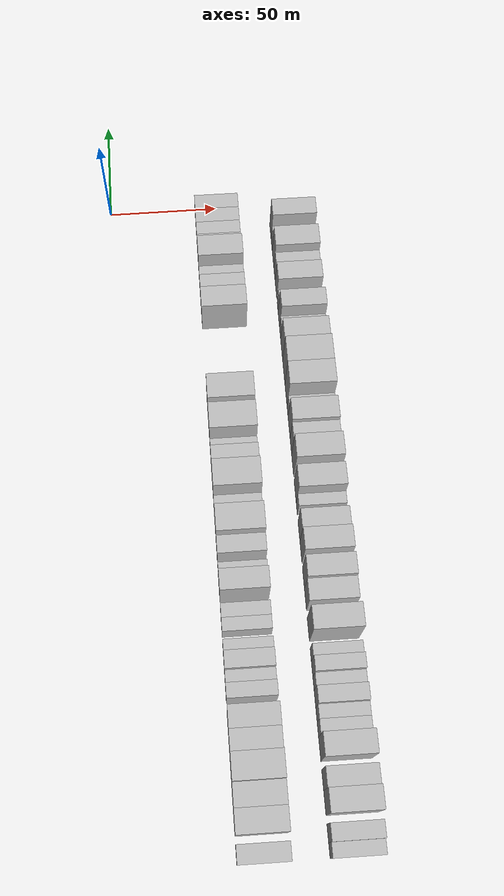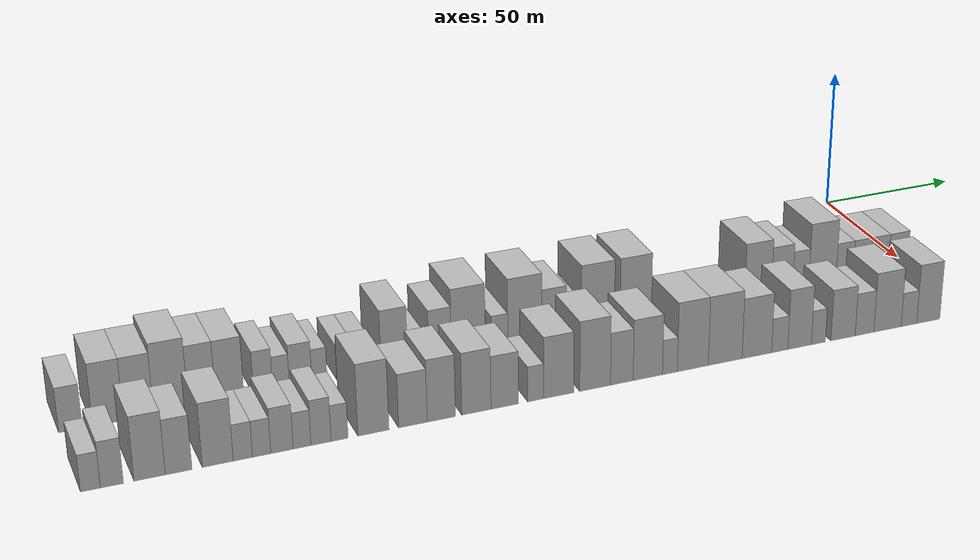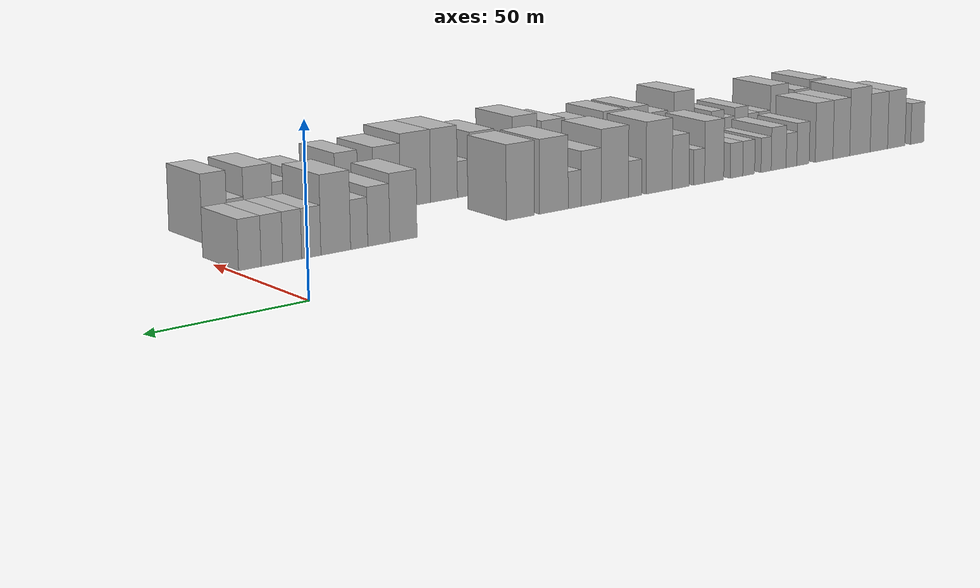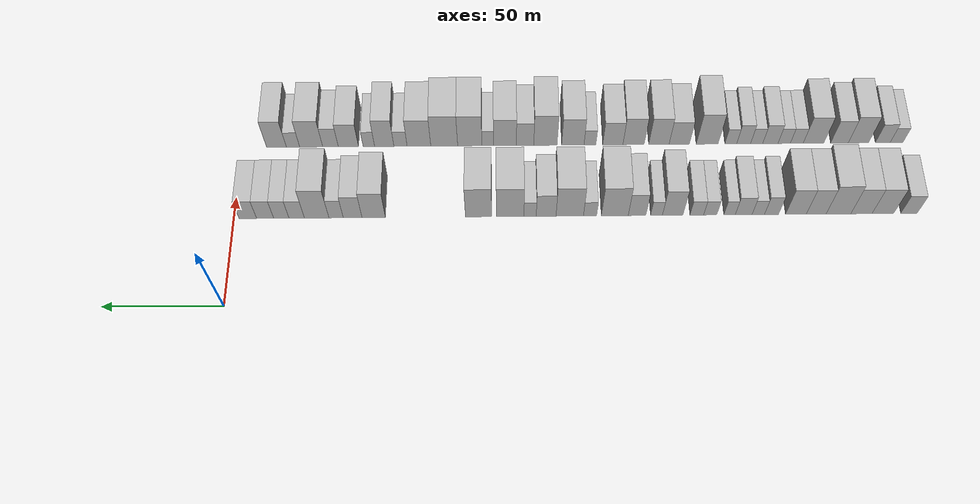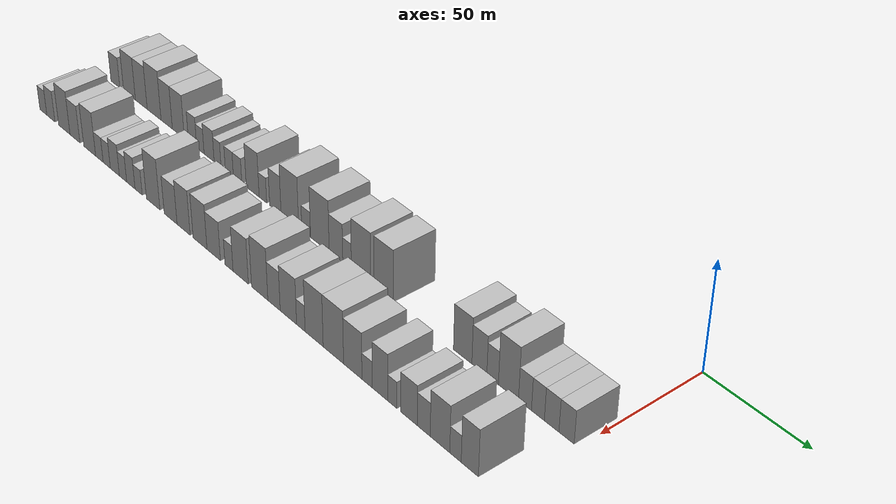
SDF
<sdf version="1.6">
 <world name="default">
  <model name="building_1">
   <static>1</static>
   <pose>50.0000 -286.4982 0 0.000000 0.000000 0.000000</pose>
   <link name="link">
    <pose>0 0 7.50 0 0 0</pose>
    <collision name="collision"><geometry><box><size>20.0000 7.0036 15.0000</size></box></geometry></collision>
    <visual name="visual">
     <cast_shadows>0</cast_shadows>
     <geometry><box><size>20.0000 7.0036 15.0000</size></box></geometry>
     <material>
      <script>
       <uri>model://HANNAS_wall/materials/scripts</uri>
       <uri>model://HANNAS_wall/materials/textures</uri>
       <name>vrc/HANNAS_wall</name>
      </script>
     </material>
    </visual>
   </link>
  </model>
  <model name="building_2">
   <static>1</static>
   <pose>50.0000 -275.3870 0 0.000000 0.000000 0.000000</pose>
   <link name="link">
    <pose>0 0 10.50 0 0 0</pose>
    <collision name="collision"><geometry><box><size>20.0000 9.2189 21.0000</size></box></geometry></collision>
    <visual name="visual">
     <cast_shadows>0</cast_shadows>
     <geometry><box><size>20.0000 9.2189 21.0000</size></box></geometry>
     <material>
      <script>
       <uri>model://HANNAS_wall/materials/scripts</uri>
       <uri>model://HANNAS_wall/materials/textures</uri>
       <name>vrc/HANNAS_wall</name>
      </script>
     </material>
    </visual>
   </link>
  </model>
  <model name="building_3">
   <static>1</static>
   <pose>50.0000 -266.2587 0 0.000000 0.000000 0.000000</pose>
   <link name="link">
    <pose>0 0 10.50 0 0 0</pose>
    <collision name="collision"><geometry><box><size>20.0000 9.0376 21.0000</size></box></geometry></collision>
    <visual name="visual">
     <cast_shadows>0</cast_shadows>
     <geometry><box><size>20.0000 9.0376 21.0000</size></box></geometry>
     <material>
      <script>
       <uri>model://HANNAS_wall/materials/scripts</uri>
       <uri>model://HANNAS_wall/materials/textures</uri>
       <name>vrc/HANNAS_wall</name>
      </script>
     </material>
    </visual>
   </link>
  </model>
  <model name="building_4">
   <static>1</static>
   <pose>50.0000 -256.4844 0 0.000000 0.000000 0.000000</pose>
   <link name="link">
    <pose>0 0 12.00 0 0 0</pose>
    <collision name="collision"><geometry><box><size>20.0000 10.5111 24.0000</size></box></geometry></collision>
    <visual name="visual">
     <cast_shadows>0</cast_shadows>
     <geometry><box><size>20.0000 10.5111 24.0000</size></box></geometry>
     <material>
      <script>
       <uri>model://HANNAS_wall/materials/scripts</uri>
       <uri>model://HANNAS_wall/materials/textures</uri>
       <name>vrc/HANNAS_wall</name>
      </script>
     </material>
    </visual>
   </link>
  </model>
  <model name="building_5">
   <static>1</static>
   <pose>50.0000 -247.0157 0 0.000000 0.000000 0.000000</pose>
   <link name="link">
    <pose>0 0 10.50 0 0 0</pose>
    <collision name="collision"><geometry><box><size>20.0000 8.4264 21.0000</size></box></geometry></collision>
    <visual name="visual">
     <cast_shadows>0</cast_shadows>
     <geometry><box><size>20.0000 8.4264 21.0000</size></box></geometry>
     <material>
      <script>
       <uri>model://HANNAS_wall/materials/scripts</uri>
       <uri>model://HANNAS_wall/materials/textures</uri>
       <name>vrc/HANNAS_wall</name>
      </script>
     </material>
    </visual>
   </link>
  </model>
  <model name="building_6">
   <static>1</static>
   <pose>50.0000 -238.3939 0 0.000000 0.000000 0.000000</pose>
   <link name="link">
    <pose>0 0 10.50 0 0 0</pose>
    <collision name="collision"><geometry><box><size>20.0000 8.8172 21.0000</size></box></geometry></collision>
    <visual name="visual">
     <cast_shadows>0</cast_shadows>
     <geometry><box><size>20.0000 8.8172 21.0000</size></box></geometry>
     <material>
      <script>
       <uri>model://HANNAS_wall/materials/scripts</uri>
       <uri>model://HANNAS_wall/materials/textures</uri>
       <name>vrc/HANNAS_wall</name>
      </script>
     </material>
    </visual>
   </link>
  </model>
  <model name="building_7">
   <static>1</static>
   <pose>50.0000 -227.9844 0 0.000000 0.000000 0.000000</pose>
   <link name="link">
    <pose>0 0 7.50 0 0 0</pose>
    <collision name="collision"><geometry><box><size>20.0000 6.0017 15.0000</size></box></geometry></collision>
    <visual name="visual">
     <cast_shadows>0</cast_shadows>
     <geometry><box><size>20.0000 6.0017 15.0000</size></box></geometry>
     <material>
      <script>
       <uri>model://HANNAS_wall/materials/scripts</uri>
       <uri>model://HANNAS_wall/materials/textures</uri>
       <name>vrc/HANNAS_wall</name>
      </script>
     </material>
    </visual>
   </link>
  </model>
  <model name="building_8">
   <static>1</static>
   <pose>50.0000 -222.3584 0 0.000000 0.000000 0.000000</pose>
   <link name="link">
    <pose>0 0 6.00 0 0 0</pose>
    <collision name="collision"><geometry><box><size>20.0000 5.2502 12.0000</size></box></geometry></collision>
    <visual name="visual">
     <cast_shadows>0</cast_shadows>
     <geometry><box><size>20.0000 5.2502 12.0000</size></box></geometry>
     <material>
      <script>
       <uri>model://HANNAS_wall/materials/scripts</uri>
       <uri>model://HANNAS_wall/materials/textures</uri>
       <name>vrc/HANNAS_wall</name>
      </script>
     </material>
    </visual>
   </link>
  </model>
  <model name="building_9">
   <static>1</static>
   <pose>50.0000 -216.1610 0 0.000000 0.000000 0.000000</pose>
   <link name="link">
    <pose>0 0 7.50 0 0 0</pose>
    <collision name="collision"><geometry><box><size>20.0000 7.1447 15.0000</size></box></geometry></collision>
    <visual name="visual">
     <cast_shadows>0</cast_shadows>
     <geometry><box><size>20.0000 7.1447 15.0000</size></box></geometry>
     <material>
      <script>
       <uri>model://HANNAS_wall/materials/scripts</uri>
       <uri>model://HANNAS_wall/materials/textures</uri>
       <name>vrc/HANNAS_wall</name>
      </script>
     </material>
    </visual>
   </link>
  </model>
  <model name="building_10">
   <static>1</static>
   <pose>50.0000 -210.1644 0 0.000000 0.000000 0.000000</pose>
   <link name="link">
    <pose>0 0 6.00 0 0 0</pose>
    <collision name="collision"><geometry><box><size>20.0000 4.8484 12.0000</size></box></geometry></collision>
    <visual name="visual">
     <cast_shadows>0</cast_shadows>
     <geometry><box><size>20.0000 4.8484 12.0000</size></box></geometry>
     <material>
      <script>
       <uri>model://HANNAS_wall/materials/scripts</uri>
       <uri>model://HANNAS_wall/materials/textures</uri>
       <name>vrc/HANNAS_wall</name>
      </script>
     </material>
    </visual>
   </link>
  </model>
  <model name="building_11">
   <static>1</static>
   <pose>50.0000 -201.9543 0 0.000000 0.000000 0.000000</pose>
   <link name="link">
    <pose>0 0 6.00 0 0 0</pose>
    <collision name="collision"><geometry><box><size>20.0000 5.5719 12.0000</size></box></geometry></collision>
    <visual name="visual">
     <cast_shadows>0</cast_shadows>
     <geometry><box><size>20.0000 5.5719 12.0000</size></box></geometry>
     <material>
      <script>
       <uri>model://HANNAS_wall/materials/scripts</uri>
       <uri>model://HANNAS_wall/materials/textures</uri>
       <name>vrc/HANNAS_wall</name>
      </script>
     </material>
    </visual>
   </link>
  </model>
  <model name="building_12">
   <static>1</static>
   <pose>50.0000 -196.2528 0 0.000000 0.000000 0.000000</pose>
   <link name="link">
    <pose>0 0 6.00 0 0 0</pose>
    <collision name="collision"><geometry><box><size>20.0000 5.8311 12.0000</size></box></geometry></collision>
    <visual name="visual">
     <cast_shadows>0</cast_shadows>
     <geometry><box><size>20.0000 5.8311 12.0000</size></box></geometry>
     <material>
      <script>
       <uri>model://HANNAS_wall/materials/scripts</uri>
       <uri>model://HANNAS_wall/materials/textures</uri>
       <name>vrc/HANNAS_wall</name>
      </script>
     </material>
    </visual>
   </link>
  </model>
  <model name="building_13">
   <static>1</static>
   <pose>50.0000 -185.9787 0 0.000000 0.000000 0.000000</pose>
   <link name="link">
    <pose>0 0 10.50 0 0 0</pose>
    <collision name="collision"><geometry><box><size>20.0000 8.7171 21.0000</size></box></geometry></collision>
    <visual name="visual">
     <cast_shadows>0</cast_shadows>
     <geometry><box><size>20.0000 8.7171 21.0000</size></box></geometry>
     <material>
      <script>
       <uri>model://HANNAS_wall/materials/scripts</uri>
       <uri>model://HANNAS_wall/materials/textures</uri>
       <name>vrc/HANNAS_wall</name>
      </script>
     </material>
    </visual>
   </link>
  </model>
  <model name="building_14">
   <static>1</static>
   <pose>50.0000 -179.1101 0 0.000000 0.000000 0.000000</pose>
   <link name="link">
    <pose>0 0 6.00 0 0 0</pose>
    <collision name="collision"><geometry><box><size>20.0000 5.0201 12.0000</size></box></geometry></collision>
    <visual name="visual">
     <cast_shadows>0</cast_shadows>
     <geometry><box><size>20.0000 5.0201 12.0000</size></box></geometry>
     <material>
      <script>
       <uri>model://HANNAS_wall/materials/scripts</uri>
       <uri>model://HANNAS_wall/materials/textures</uri>
       <name>vrc/HANNAS_wall</name>
      </script>
     </material>
    </visual>
   </link>
  </model>
  <model name="building_15">
   <static>1</static>
   <pose>50.0000 -170.8484 0 0.000000 0.000000 0.000000</pose>
   <link name="link">
    <pose>0 0 9.00 0 0 0</pose>
    <collision name="collision"><geometry><box><size>20.0000 7.5033 18.0000</size></box></geometry></collision>
    <visual name="visual">
     <cast_shadows>0</cast_shadows>
     <geometry><box><size>20.0000 7.5033 18.0000</size></box></geometry>
     <material>
      <script>
       <uri>model://HANNAS_wall/materials/scripts</uri>
       <uri>model://HANNAS_wall/materials/textures</uri>
       <name>vrc/HANNAS_wall</name>
      </script>
     </material>
    </visual>
   </link>
  </model>
  <model name="building_16">
   <static>1</static>
   <pose>50.0000 -161.3963 0 0.000000 0.000000 0.000000</pose>
   <link name="link">
    <pose>0 0 12.00 0 0 0</pose>
    <collision name="collision"><geometry><box><size>20.0000 11.4009 24.0000</size></box></geometry></collision>
    <visual name="visual">
     <cast_shadows>0</cast_shadows>
     <geometry><box><size>20.0000 11.4009 24.0000</size></box></geometry>
     <material>
      <script>
       <uri>model://HANNAS_wall/materials/scripts</uri>
       <uri>model://HANNAS_wall/materials/textures</uri>
       <name>vrc/HANNAS_wall</name>
      </script>
     </material>
    </visual>
   </link>
  </model>
  <model name="building_17">
   <static>1</static>
   <pose>50.0000 -150.9021 0 0.000000 0.000000 0.000000</pose>
   <link name="link">
    <pose>0 0 6.00 0 0 0</pose>
    <collision name="collision"><geometry><box><size>20.0000 5.5875 12.0000</size></box></geometry></collision>
    <visual name="visual">
     <cast_shadows>0</cast_shadows>
     <geometry><box><size>20.0000 5.5875 12.0000</size></box></geometry>
     <material>
      <script>
       <uri>model://HANNAS_wall/materials/scripts</uri>
       <uri>model://HANNAS_wall/materials/textures</uri>
       <name>vrc/HANNAS_wall</name>
      </script>
     </material>
    </visual>
   </link>
  </model>
  <model name="building_18">
   <static>1</static>
   <pose>50.0000 -142.2736 0 0.000000 0.000000 0.000000</pose>
   <link name="link">
    <pose>0 0 12.00 0 0 0</pose>
    <collision name="collision"><geometry><box><size>20.0000 11.6695 24.0000</size></box></geometry></collision>
    <visual name="visual">
     <cast_shadows>0</cast_shadows>
     <geometry><box><size>20.0000 11.6695 24.0000</size></box></geometry>
     <material>
      <script>
       <uri>model://HANNAS_wall/materials/scripts</uri>
       <uri>model://HANNAS_wall/materials/textures</uri>
       <name>vrc/HANNAS_wall</name>
      </script>
     </material>
    </visual>
   </link>
  </model>
  <model name="building_19">
   <static>1</static>
   <pose>50.0000 -132.2392 0 0.000000 0.000000 0.000000</pose>
   <link name="link">
    <pose>0 0 9.00 0 0 0</pose>
    <collision name="collision"><geometry><box><size>20.0000 8.3993 18.0000</size></box></geometry></collision>
    <visual name="visual">
     <cast_shadows>0</cast_shadows>
     <geometry><box><size>20.0000 8.3993 18.0000</size></box></geometry>
     <material>
      <script>
       <uri>model://HANNAS_wall/materials/scripts</uri>
       <uri>model://HANNAS_wall/materials/textures</uri>
       <name>vrc/HANNAS_wall</name>
      </script>
     </material>
    </visual>
   </link>
  </model>
  <model name="building_20">
   <static>1</static>
   <pose>50.0000 -125.4247 0 0.000000 0.000000 0.000000</pose>
   <link name="link">
    <pose>0 0 6.00 0 0 0</pose>
    <collision name="collision"><geometry><box><size>20.0000 5.2296 12.0000</size></box></geometry></collision>
    <visual name="visual">
     <cast_shadows>0</cast_shadows>
     <geometry><box><size>20.0000 5.2296 12.0000</size></box></geometry>
     <material>
      <script>
       <uri>model://HANNAS_wall/materials/scripts</uri>
       <uri>model://HANNAS_wall/materials/textures</uri>
       <name>vrc/HANNAS_wall</name>
      </script>
     </material>
    </visual>
   </link>
  </model>
  <model name="building_21">
   <static>1</static>
   <pose>50.0000 -117.0029 0 0.000000 0.000000 0.000000</pose>
   <link name="link">
    <pose>0 0 12.00 0 0 0</pose>
    <collision name="collision"><geometry><box><size>20.0000 11.6140 24.0000</size></box></geometry></collision>
    <visual name="visual">
     <cast_shadows>0</cast_shadows>
     <geometry><box><size>20.0000 11.6140 24.0000</size></box></geometry>
     <material>
      <script>
       <uri>model://HANNAS_wall/materials/scripts</uri>
       <uri>model://HANNAS_wall/materials/textures</uri>
       <name>vrc/HANNAS_wall</name>
      </script>
     </material>
    </visual>
   </link>
  </model>
  <model name="building_22">
   <static>1</static>
   <pose>50.0000 -103.6227 0 0.000000 0.000000 0.000000</pose>
   <link name="link">
    <pose>0 0 12.00 0 0 0</pose>
    <collision name="collision"><geometry><box><size>20.0000 11.1463 24.0000</size></box></geometry></collision>
    <visual name="visual">
     <cast_shadows>0</cast_shadows>
     <geometry><box><size>20.0000 11.1463 24.0000</size></box></geometry>
     <material>
      <script>
       <uri>model://HANNAS_wall/materials/scripts</uri>
       <uri>model://HANNAS_wall/materials/textures</uri>
       <name>vrc/HANNAS_wall</name>
      </script>
     </material>
    </visual>
   </link>
  </model>
  <model name="building_23">
   <static>1</static>
   <pose>50.0000 -59.1376 0 0.000000 0.000000 0.000000</pose>
   <link name="link">
    <pose>0 0 10.50 0 0 0</pose>
    <collision name="collision"><geometry><box><size>20.0000 9.9413 21.0000</size></box></geometry></collision>
    <visual name="visual">
     <cast_shadows>0</cast_shadows>
     <geometry><box><size>20.0000 9.9413 21.0000</size></box></geometry>
     <material>
      <script>
       <uri>model://HANNAS_wall/materials/scripts</uri>
       <uri>model://HANNAS_wall/materials/textures</uri>
       <name>vrc/HANNAS_wall</name>
      </script>
     </material>
    </visual>
   </link>
  </model>
  <model name="building_24">
   <static>1</static>
   <pose>50.0000 -50.2014 0 0.000000 0.000000 0.000000</pose>
   <link name="link">
    <pose>0 0 9.00 0 0 0</pose>
    <collision name="collision"><geometry><box><size>20.0000 7.9310 18.0000</size></box></geometry></collision>
    <visual name="visual">
     <cast_shadows>0</cast_shadows>
     <geometry><box><size>20.0000 7.9310 18.0000</size></box></geometry>
     <material>
      <script>
       <uri>model://HANNAS_wall/materials/scripts</uri>
       <uri>model://HANNAS_wall/materials/textures</uri>
       <name>vrc/HANNAS_wall</name>
      </script>
     </material>
    </visual>
   </link>
  </model>
  <model name="building_25">
   <static>1</static>
   <pose>50.0000 -43.1942 0 0.000000 0.000000 0.000000</pose>
   <link name="link">
    <pose>0 0 7.50 0 0 0</pose>
    <collision name="collision"><geometry><box><size>20.0000 6.0834 15.0000</size></box></geometry></collision>
    <visual name="visual">
     <cast_shadows>0</cast_shadows>
     <geometry><box><size>20.0000 6.0834 15.0000</size></box></geometry>
     <material>
      <script>
       <uri>model://HANNAS_wall/materials/scripts</uri>
       <uri>model://HANNAS_wall/materials/textures</uri>
       <name>vrc/HANNAS_wall</name>
      </script>
     </material>
    </visual>
   </link>
  </model>
  <model name="building_26">
   <static>1</static>
   <pose>50.0000 -34.9737 0 0.000000 0.000000 0.000000</pose>
   <link name="link">
    <pose>0 0 12.00 0 0 0</pose>
    <collision name="collision"><geometry><box><size>20.0000 10.3576 24.0000</size></box></geometry></collision>
    <visual name="visual">
     <cast_shadows>0</cast_shadows>
     <geometry><box><size>20.0000 10.3576 24.0000</size></box></geometry>
     <material>
      <script>
       <uri>model://HANNAS_wall/materials/scripts</uri>
       <uri>model://HANNAS_wall/materials/textures</uri>
       <name>vrc/HANNAS_wall</name>
      </script>
     </material>
    </visual>
   </link>
  </model>
  <model name="building_27">
   <static>1</static>
   <pose>50.0000 -26.5059 0 0.000000 0.000000 0.000000</pose>
   <link name="link">
    <pose>0 0 7.50 0 0 0</pose>
    <collision name="collision"><geometry><box><size>20.0000 6.5779 15.0000</size></box></geometry></collision>
    <visual name="visual">
     <cast_shadows>0</cast_shadows>
     <geometry><box><size>20.0000 6.5779 15.0000</size></box></geometry>
     <material>
      <script>
       <uri>model://HANNAS_wall/materials/scripts</uri>
       <uri>model://HANNAS_wall/materials/textures</uri>
       <name>vrc/HANNAS_wall</name>
      </script>
     </material>
    </visual>
   </link>
  </model>
  <model name="building_28">
   <static>1</static>
   <pose>50.0000 -19.9818 0 0.000000 0.000000 0.000000</pose>
   <link name="link">
    <pose>0 0 7.50 0 0 0</pose>
    <collision name="collision"><geometry><box><size>20.0000 6.4703 15.0000</size></box></geometry></collision>
    <visual name="visual">
     <cast_shadows>0</cast_shadows>
     <geometry><box><size>20.0000 6.4703 15.0000</size></box></geometry>
     <material>
      <script>
       <uri>model://HANNAS_wall/materials/scripts</uri>
       <uri>model://HANNAS_wall/materials/textures</uri>
       <name>vrc/HANNAS_wall</name>
      </script>
     </material>
    </visual>
   </link>
  </model>
  <model name="building_29">
   <static>1</static>
   <pose>50.0000 -13.1419 0 0.000000 0.000000 0.000000</pose>
   <link name="link">
    <pose>0 0 7.50 0 0 0</pose>
    <collision name="collision"><geometry><box><size>20.0000 7.2096 15.0000</size></box></geometry></collision>
    <visual name="visual">
     <cast_shadows>0</cast_shadows>
     <geometry><box><size>20.0000 7.2096 15.0000</size></box></geometry>
     <material>
      <script>
       <uri>model://HANNAS_wall/materials/scripts</uri>
       <uri>model://HANNAS_wall/materials/textures</uri>
       <name>vrc/HANNAS_wall</name>
      </script>
     </material>
    </visual>
   </link>
  </model>
  <model name="building_30">
   <static>1</static>
   <pose>50.0000 -5.8163 0 0.000000 0.000000 0.000000</pose>
   <link name="link">
    <pose>0 0 7.50 0 0 0</pose>
    <collision name="collision"><geometry><box><size>20.0000 7.4415 15.0000</size></box></geometry></collision>
    <visual name="visual">
     <cast_shadows>0</cast_shadows>
     <geometry><box><size>20.0000 7.4415 15.0000</size></box></geometry>
     <material>
      <script>
       <uri>model://HANNAS_wall/materials/scripts</uri>
       <uri>model://HANNAS_wall/materials/textures</uri>
       <name>vrc/HANNAS_wall</name>
      </script>
     </material>
    </visual>
   </link>
  </model>
  <model name="building_63">
   <static>1</static>
   <pose>85.0000 -287.1924 0 0.000000 0.000000 0.000000</pose>
   <link name="link">
    <pose>0 0 6.00 0 0 0</pose>
    <collision name="collision"><geometry><box><size>20.0000 5.6152 12.0000</size></box></geometry></collision>
    <visual name="visual">
     <cast_shadows>0</cast_shadows>
     <geometry><box><size>20.0000 5.6152 12.0000</size></box></geometry>
     <material>
      <script>
       <uri>model://HANNAS_wall/materials/scripts</uri>
       <uri>model://HANNAS_wall/materials/textures</uri>
       <name>vrc/HANNAS_wall</name>
      </script>
     </material>
    </visual>
   </link>
  </model>
  <model name="building_64">
   <static>1</static>
   <pose>85.0000 -281.1263 0 0.000000 0.000000 0.000000</pose>
   <link name="link">
    <pose>0 0 7.50 0 0 0</pose>
    <collision name="collision"><geometry><box><size>20.0000 6.5170 15.0000</size></box></geometry></collision>
    <visual name="visual">
     <cast_shadows>0</cast_shadows>
     <geometry><box><size>20.0000 6.5170 15.0000</size></box></geometry>
     <material>
      <script>
       <uri>model://HANNAS_wall/materials/scripts</uri>
       <uri>model://HANNAS_wall/materials/textures</uri>
       <name>vrc/HANNAS_wall</name>
      </script>
     </material>
    </visual>
   </link>
  </model>
  <model name="building_65">
   <static>1</static>
   <pose>85.0000 -270.3807 0 0.000000 0.000000 0.000000</pose>
   <link name="link">
    <pose>0 0 10.50 0 0 0</pose>
    <collision name="collision"><geometry><box><size>20.0000 8.9742 21.0000</size></box></geometry></collision>
    <visual name="visual">
     <cast_shadows>0</cast_shadows>
     <geometry><box><size>20.0000 8.9742 21.0000</size></box></geometry>
     <material>
      <script>
       <uri>model://HANNAS_wall/materials/scripts</uri>
       <uri>model://HANNAS_wall/materials/textures</uri>
       <name>vrc/HANNAS_wall</name>
      </script>
     </material>
    </visual>
   </link>
  </model>
  <model name="building_66">
   <static>1</static>
   <pose>85.0000 -262.0356 0 0.000000 0.000000 0.000000</pose>
   <link name="link">
    <pose>0 0 9.00 0 0 0</pose>
    <collision name="collision"><geometry><box><size>20.0000 7.7160 18.0000</size></box></geometry></collision>
    <visual name="visual">
     <cast_shadows>0</cast_shadows>
     <geometry><box><size>20.0000 7.7160 18.0000</size></box></geometry>
     <material>
      <script>
       <uri>model://HANNAS_wall/materials/scripts</uri>
       <uri>model://HANNAS_wall/materials/textures</uri>
       <name>vrc/HANNAS_wall</name>
      </script>
     </material>
    </visual>
   </link>
  </model>
  <model name="building_67">
   <static>1</static>
   <pose>85.0000 -250.6424 0 0.000000 0.000000 0.000000</pose>
   <link name="link">
    <pose>0 0 10.50 0 0 0</pose>
    <collision name="collision"><geometry><box><size>20.0000 9.0705 21.0000</size></box></geometry></collision>
    <visual name="visual">
     <cast_shadows>0</cast_shadows>
     <geometry><box><size>20.0000 9.0705 21.0000</size></box></geometry>
     <material>
      <script>
       <uri>model://HANNAS_wall/materials/scripts</uri>
       <uri>model://HANNAS_wall/materials/textures</uri>
       <name>vrc/HANNAS_wall</name>
      </script>
     </material>
    </visual>
   </link>
  </model>
  <model name="building_68">
   <static>1</static>
   <pose>85.0000 -243.2671 0 0.000000 0.000000 0.000000</pose>
   <link name="link">
    <pose>0 0 6.00 0 0 0</pose>
    <collision name="collision"><geometry><box><size>20.0000 5.6801 12.0000</size></box></geometry></collision>
    <visual name="visual">
     <cast_shadows>0</cast_shadows>
     <geometry><box><size>20.0000 5.6801 12.0000</size></box></geometry>
     <material>
      <script>
       <uri>model://HANNAS_wall/materials/scripts</uri>
       <uri>model://HANNAS_wall/materials/textures</uri>
       <name>vrc/HANNAS_wall</name>
      </script>
     </material>
    </visual>
   </link>
  </model>
  <model name="building_69">
   <static>1</static>
   <pose>85.0000 -237.7137 0 0.000000 0.000000 0.000000</pose>
   <link name="link">
    <pose>0 0 6.00 0 0 0</pose>
    <collision name="collision"><geometry><box><size>20.0000 5.4266 12.0000</size></box></geometry></collision>
    <visual name="visual">
     <cast_shadows>0</cast_shadows>
     <geometry><box><size>20.0000 5.4266 12.0000</size></box></geometry>
     <material>
      <script>
       <uri>model://HANNAS_wall/materials/scripts</uri>
       <uri>model://HANNAS_wall/materials/textures</uri>
       <name>vrc/HANNAS_wall</name>
      </script>
     </material>
    </visual>
   </link>
  </model>
  <model name="building_70">
   <static>1</static>
   <pose>85.0000 -231.6417 0 0.000000 0.000000 0.000000</pose>
   <link name="link">
    <pose>0 0 7.50 0 0 0</pose>
    <collision name="collision"><geometry><box><size>20.0000 6.7173 15.0000</size></box></geometry></collision>
    <visual name="visual">
     <cast_shadows>0</cast_shadows>
     <geometry><box><size>20.0000 6.7173 15.0000</size></box></geometry>
     <material>
      <script>
       <uri>model://HANNAS_wall/materials/scripts</uri>
       <uri>model://HANNAS_wall/materials/textures</uri>
       <name>vrc/HANNAS_wall</name>
      </script>
     </material>
    </visual>
   </link>
  </model>
  <model name="building_71">
   <static>1</static>
   <pose>85.0000 -225.6113 0 0.000000 0.000000 0.000000</pose>
   <link name="link">
    <pose>0 0 6.00 0 0 0</pose>
    <collision name="collision"><geometry><box><size>20.0000 5.3435 12.0000</size></box></geometry></collision>
    <visual name="visual">
     <cast_shadows>0</cast_shadows>
     <geometry><box><size>20.0000 5.3435 12.0000</size></box></geometry>
     <material>
      <script>
       <uri>model://HANNAS_wall/materials/scripts</uri>
       <uri>model://HANNAS_wall/materials/textures</uri>
       <name>vrc/HANNAS_wall</name>
      </script>
     </material>
    </visual>
   </link>
  </model>
  <model name="building_72">
   <static>1</static>
   <pose>85.0000 -219.8906 0 0.000000 0.000000 0.000000</pose>
   <link name="link">
    <pose>0 0 7.50 0 0 0</pose>
    <collision name="collision"><geometry><box><size>20.0000 6.0978 15.0000</size></box></geometry></collision>
    <visual name="visual">
     <cast_shadows>0</cast_shadows>
     <geometry><box><size>20.0000 6.0978 15.0000</size></box></geometry>
     <material>
      <script>
       <uri>model://HANNAS_wall/materials/scripts</uri>
       <uri>model://HANNAS_wall/materials/textures</uri>
       <name>vrc/HANNAS_wall</name>
      </script>
     </material>
    </visual>
   </link>
  </model>
  <model name="building_73">
   <static>1</static>
   <pose>85.0000 -214.2509 0 0.000000 0.000000 0.000000</pose>
   <link name="link">
    <pose>0 0 6.00 0 0 0</pose>
    <collision name="collision"><geometry><box><size>20.0000 5.1817 12.0000</size></box></geometry></collision>
    <visual name="visual">
     <cast_shadows>0</cast_shadows>
     <geometry><box><size>20.0000 5.1817 12.0000</size></box></geometry>
     <material>
      <script>
       <uri>model://HANNAS_wall/materials/scripts</uri>
       <uri>model://HANNAS_wall/materials/textures</uri>
       <name>vrc/HANNAS_wall</name>
      </script>
     </material>
    </visual>
   </link>
  </model>
  <model name="building_74">
   <static>1</static>
   <pose>85.0000 -203.8577 0 0.000000 0.000000 0.000000</pose>
   <link name="link">
    <pose>0 0 12.00 0 0 0</pose>
    <collision name="collision"><geometry><box><size>20.0000 9.6047 24.0000</size></box></geometry></collision>
    <visual name="visual">
     <cast_shadows>0</cast_shadows>
     <geometry><box><size>20.0000 9.6047 24.0000</size></box></geometry>
     <material>
      <script>
       <uri>model://HANNAS_wall/materials/scripts</uri>
       <uri>model://HANNAS_wall/materials/textures</uri>
       <name>vrc/HANNAS_wall</name>
      </script>
     </material>
    </visual>
   </link>
  </model>
  <model name="building_75">
   <static>1</static>
   <pose>85.0000 -191.5924 0 0.000000 0.000000 0.000000</pose>
   <link name="link">
    <pose>0 0 9.00 0 0 0</pose>
    <collision name="collision"><geometry><box><size>20.0000 8.9259 18.0000</size></box></geometry></collision>
    <visual name="visual">
     <cast_shadows>0</cast_shadows>
     <geometry><box><size>20.0000 8.9259 18.0000</size></box></geometry>
     <material>
      <script>
       <uri>model://HANNAS_wall/materials/scripts</uri>
       <uri>model://HANNAS_wall/materials/textures</uri>
       <name>vrc/HANNAS_wall</name>
      </script>
     </material>
    </visual>
   </link>
  </model>
  <model name="building_76">
   <static>1</static>
   <pose>85.0000 -182.6513 0 0.000000 0.000000 0.000000</pose>
   <link name="link">
    <pose>0 0 10.50 0 0 0</pose>
    <collision name="collision"><geometry><box><size>20.0000 8.9563 21.0000</size></box></geometry></collision>
    <visual name="visual">
     <cast_shadows>0</cast_shadows>
     <geometry><box><size>20.0000 8.9563 21.0000</size></box></geometry>
     <material>
      <script>
       <uri>model://HANNAS_wall/materials/scripts</uri>
       <uri>model://HANNAS_wall/materials/textures</uri>
       <name>vrc/HANNAS_wall</name>
      </script>
     </material>
    </visual>
   </link>
  </model>
  <model name="building_77">
   <static>1</static>
   <pose>85.0000 -171.5123 0 0.000000 0.000000 0.000000</pose>
   <link name="link">
    <pose>0 0 10.50 0 0 0</pose>
    <collision name="collision"><geometry><box><size>20.0000 9.3218 21.0000</size></box></geometry></collision>
    <visual name="visual">
     <cast_shadows>0</cast_shadows>
     <geometry><box><size>20.0000 9.3218 21.0000</size></box></geometry>
     <material>
      <script>
       <uri>model://HANNAS_wall/materials/scripts</uri>
       <uri>model://HANNAS_wall/materials/textures</uri>
       <name>vrc/HANNAS_wall</name>
      </script>
     </material>
    </visual>
   </link>
  </model>
  <model name="building_78">
   <static>1</static>
   <pose>85.0000 -162.4154 0 0.000000 0.000000 0.000000</pose>
   <link name="link">
    <pose>0 0 9.00 0 0 0</pose>
    <collision name="collision"><geometry><box><size>20.0000 8.8719 18.0000</size></box></geometry></collision>
    <visual name="visual">
     <cast_shadows>0</cast_shadows>
     <geometry><box><size>20.0000 8.8719 18.0000</size></box></geometry>
     <material>
      <script>
       <uri>model://HANNAS_wall/materials/scripts</uri>
       <uri>model://HANNAS_wall/materials/textures</uri>
       <name>vrc/HANNAS_wall</name>
      </script>
     </material>
    </visual>
   </link>
  </model>
  <model name="building_79">
   <static>1</static>
   <pose>85.0000 -152.3727 0 0.000000 0.000000 0.000000</pose>
   <link name="link">
    <pose>0 0 6.00 0 0 0</pose>
    <collision name="collision"><geometry><box><size>20.0000 5.2136 12.0000</size></box></geometry></collision>
    <visual name="visual">
     <cast_shadows>0</cast_shadows>
     <geometry><box><size>20.0000 5.2136 12.0000</size></box></geometry>
     <material>
      <script>
       <uri>model://HANNAS_wall/materials/scripts</uri>
       <uri>model://HANNAS_wall/materials/textures</uri>
       <name>vrc/HANNAS_wall</name>
      </script>
     </material>
    </visual>
   </link>
  </model>
  <model name="building_80">
   <static>1</static>
   <pose>85.0000 -144.8500 0 0.000000 0.000000 0.000000</pose>
   <link name="link">
    <pose>0 0 10.50 0 0 0</pose>
    <collision name="collision"><geometry><box><size>20.0000 9.8317 21.0000</size></box></geometry></collision>
    <visual name="visual">
     <cast_shadows>0</cast_shadows>
     <geometry><box><size>20.0000 9.8317 21.0000</size></box></geometry>
     <material>
      <script>
       <uri>model://HANNAS_wall/materials/scripts</uri>
       <uri>model://HANNAS_wall/materials/textures</uri>
       <name>vrc/HANNAS_wall</name>
      </script>
     </material>
    </visual>
   </link>
  </model>
  <model name="building_81">
   <static>1</static>
   <pose>85.0000 -132.8138 0 0.000000 0.000000 0.000000</pose>
   <link name="link">
    <pose>0 0 12.00 0 0 0</pose>
    <collision name="collision"><geometry><box><size>20.0000 10.2409 24.0000</size></box></geometry></collision>
    <visual name="visual">
     <cast_shadows>0</cast_shadows>
     <geometry><box><size>20.0000 10.2409 24.0000</size></box></geometry>
     <material>
      <script>
       <uri>model://HANNAS_wall/materials/scripts</uri>
       <uri>model://HANNAS_wall/materials/textures</uri>
       <name>vrc/HANNAS_wall</name>
      </script>
     </material>
    </visual>
   </link>
  </model>
  <model name="building_82">
   <static>1</static>
   <pose>85.0000 -123.8811 0 0.000000 0.000000 0.000000</pose>
   <link name="link">
    <pose>0 0 9.00 0 0 0</pose>
    <collision name="collision"><geometry><box><size>20.0000 7.6244 18.0000</size></box></geometry></collision>
    <visual name="visual">
     <cast_shadows>0</cast_shadows>
     <geometry><box><size>20.0000 7.6244 18.0000</size></box></geometry>
     <material>
      <script>
       <uri>model://HANNAS_wall/materials/scripts</uri>
       <uri>model://HANNAS_wall/materials/textures</uri>
       <name>vrc/HANNAS_wall</name>
      </script>
     </material>
    </visual>
   </link>
  </model>
  <model name="building_83">
   <static>1</static>
   <pose>85.0000 -115.0884 0 0.000000 0.000000 0.000000</pose>
   <link name="link">
    <pose>0 0 10.50 0 0 0</pose>
    <collision name="collision"><geometry><box><size>20.0000 9.9611 21.0000</size></box></geometry></collision>
    <visual name="visual">
     <cast_shadows>0</cast_shadows>
     <geometry><box><size>20.0000 9.9611 21.0000</size></box></geometry>
     <material>
      <script>
       <uri>model://HANNAS_wall/materials/scripts</uri>
       <uri>model://HANNAS_wall/materials/textures</uri>
       <name>vrc/HANNAS_wall</name>
      </script>
     </material>
    </visual>
   </link>
  </model>
  <model name="building_84">
   <static>1</static>
   <pose>85.0000 -107.5646 0 0.000000 0.000000 0.000000</pose>
   <link name="link">
    <pose>0 0 6.00 0 0 0</pose>
    <collision name="collision"><geometry><box><size>20.0000 5.0864 12.0000</size></box></geometry></collision>
    <visual name="visual">
     <cast_shadows>0</cast_shadows>
     <geometry><box><size>20.0000 5.0864 12.0000</size></box></geometry>
     <material>
      <script>
       <uri>model://HANNAS_wall/materials/scripts</uri>
       <uri>model://HANNAS_wall/materials/textures</uri>
       <name>vrc/HANNAS_wall</name>
      </script>
     </material>
    </visual>
   </link>
  </model>
  <model name="building_85">
   <static>1</static>
   <pose>85.0000 -99.6819 0 0.000000 0.000000 0.000000</pose>
   <link name="link">
    <pose>0 0 12.00 0 0 0</pose>
    <collision name="collision"><geometry><box><size>20.0000 10.6792 24.0000</size></box></geometry></collision>
    <visual name="visual">
     <cast_shadows>0</cast_shadows>
     <geometry><box><size>20.0000 10.6792 24.0000</size></box></geometry>
     <material>
      <script>
       <uri>model://HANNAS_wall/materials/scripts</uri>
       <uri>model://HANNAS_wall/materials/textures</uri>
       <name>vrc/HANNAS_wall</name>
      </script>
     </material>
    </visual>
   </link>
  </model>
  <model name="building_86">
   <static>1</static>
   <pose>85.0000 -88.4474 0 0.000000 0.000000 0.000000</pose>
   <link name="link">
    <pose>0 0 12.00 0 0 0</pose>
    <collision name="collision"><geometry><box><size>20.0000 11.7898 24.0000</size></box></geometry></collision>
    <visual name="visual">
     <cast_shadows>0</cast_shadows>
     <geometry><box><size>20.0000 11.7898 24.0000</size></box></geometry>
     <material>
      <script>
       <uri>model://HANNAS_wall/materials/scripts</uri>
       <uri>model://HANNAS_wall/materials/textures</uri>
       <name>vrc/HANNAS_wall</name>
      </script>
     </material>
    </visual>
   </link>
  </model>
  <model name="building_87">
   <static>1</static>
   <pose>85.0000 -77.3481 0 0.000000 0.000000 0.000000</pose>
   <link name="link">
    <pose>0 0 10.50 0 0 0</pose>
    <collision name="collision"><geometry><box><size>20.0000 10.4089 21.0000</size></box></geometry></collision>
    <visual name="visual">
     <cast_shadows>0</cast_shadows>
     <geometry><box><size>20.0000 10.4089 21.0000</size></box></geometry>
     <material>
      <script>
       <uri>model://HANNAS_wall/materials/scripts</uri>
       <uri>model://HANNAS_wall/materials/textures</uri>
       <name>vrc/HANNAS_wall</name>
      </script>
     </material>
    </visual>
   </link>
  </model>
  <model name="building_88">
   <static>1</static>
   <pose>85.0000 -69.2561 0 0.000000 0.000000 0.000000</pose>
   <link name="link">
    <pose>0 0 6.00 0 0 0</pose>
    <collision name="collision"><geometry><box><size>20.0000 5.7751 12.0000</size></box></geometry></collision>
    <visual name="visual">
     <cast_shadows>0</cast_shadows>
     <geometry><box><size>20.0000 5.7751 12.0000</size></box></geometry>
     <material>
      <script>
       <uri>model://HANNAS_wall/materials/scripts</uri>
       <uri>model://HANNAS_wall/materials/textures</uri>
       <name>vrc/HANNAS_wall</name>
      </script>
     </material>
    </visual>
   </link>
  </model>
  <model name="building_89">
   <static>1</static>
   <pose>85.0000 -62.1403 0 0.000000 0.000000 0.000000</pose>
   <link name="link">
    <pose>0 0 10.50 0 0 0</pose>
    <collision name="collision"><geometry><box><size>20.0000 8.4565 21.0000</size></box></geometry></collision>
    <visual name="visual">
     <cast_shadows>0</cast_shadows>
     <geometry><box><size>20.0000 8.4565 21.0000</size></box></geometry>
     <material>
      <script>
       <uri>model://HANNAS_wall/materials/scripts</uri>
       <uri>model://HANNAS_wall/materials/textures</uri>
       <name>vrc/HANNAS_wall</name>
      </script>
     </material>
    </visual>
   </link>
  </model>
  <model name="building_90">
   <static>1</static>
   <pose>85.0000 -55.4029 0 0.000000 0.000000 0.000000</pose>
   <link name="link">
    <pose>0 0 6.00 0 0 0</pose>
    <collision name="collision"><geometry><box><size>20.0000 5.0185 12.0000</size></box></geometry></collision>
    <visual name="visual">
     <cast_shadows>0</cast_shadows>
     <geometry><box><size>20.0000 5.0185 12.0000</size></box></geometry>
     <material>
      <script>
       <uri>model://HANNAS_wall/materials/scripts</uri>
       <uri>model://HANNAS_wall/materials/textures</uri>
       <name>vrc/HANNAS_wall</name>
      </script>
     </material>
    </visual>
   </link>
  </model>
  <model name="building_91">
   <static>1</static>
   <pose>85.0000 -46.4633 0 0.000000 0.000000 0.000000</pose>
   <link name="link">
    <pose>0 0 9.00 0 0 0</pose>
    <collision name="collision"><geometry><box><size>20.0000 8.8607 18.0000</size></box></geometry></collision>
    <visual name="visual">
     <cast_shadows>0</cast_shadows>
     <geometry><box><size>20.0000 8.8607 18.0000</size></box></geometry>
     <material>
      <script>
       <uri>model://HANNAS_wall/materials/scripts</uri>
       <uri>model://HANNAS_wall/materials/textures</uri>
       <name>vrc/HANNAS_wall</name>
      </script>
     </material>
    </visual>
   </link>
  </model>
  <model name="building_92">
   <static>1</static>
   <pose>85.0000 -38.6124 0 0.000000 0.000000 0.000000</pose>
   <link name="link">
    <pose>0 0 7.50 0 0 0</pose>
    <collision name="collision"><geometry><box><size>20.0000 6.8411 15.0000</size></box></geometry></collision>
    <visual name="visual">
     <cast_shadows>0</cast_shadows>
     <geometry><box><size>20.0000 6.8411 15.0000</size></box></geometry>
     <material>
      <script>
       <uri>model://HANNAS_wall/materials/scripts</uri>
       <uri>model://HANNAS_wall/materials/textures</uri>
       <name>vrc/HANNAS_wall</name>
      </script>
     </material>
    </visual>
   </link>
  </model>
  <model name="building_93">
   <static>1</static>
   <pose>85.0000 -30.1365 0 0.000000 0.000000 0.000000</pose>
   <link name="link">
    <pose>0 0 10.50 0 0 0</pose>
    <collision name="collision"><geometry><box><size>20.0000 10.1108 21.0000</size></box></geometry></collision>
    <visual name="visual">
     <cast_shadows>0</cast_shadows>
     <geometry><box><size>20.0000 10.1108 21.0000</size></box></geometry>
     <material>
      <script>
       <uri>model://HANNAS_wall/materials/scripts</uri>
       <uri>model://HANNAS_wall/materials/textures</uri>
       <name>vrc/HANNAS_wall</name>
      </script>
     </material>
    </visual>
   </link>
  </model>
  <model name="building_94">
   <static>1</static>
   <pose>85.0000 -22.1719 0 0.000000 0.000000 0.000000</pose>
   <link name="link">
    <pose>0 0 6.00 0 0 0</pose>
    <collision name="collision"><geometry><box><size>20.0000 5.8184 12.0000</size></box></geometry></collision>
    <visual name="visual">
     <cast_shadows>0</cast_shadows>
     <geometry><box><size>20.0000 5.8184 12.0000</size></box></geometry>
     <material>
      <script>
       <uri>model://HANNAS_wall/materials/scripts</uri>
       <uri>model://HANNAS_wall/materials/textures</uri>
       <name>vrc/HANNAS_wall</name>
      </script>
     </material>
    </visual>
   </link>
  </model>
  <model name="building_95">
   <static>1</static>
   <pose>85.0000 -14.9377 0 0.000000 0.000000 0.000000</pose>
   <link name="link">
    <pose>0 0 10.50 0 0 0</pose>
    <collision name="collision"><geometry><box><size>20.0000 8.6500 21.0000</size></box></geometry></collision>
    <visual name="visual">
     <cast_shadows>0</cast_shadows>
     <geometry><box><size>20.0000 8.6500 21.0000</size></box></geometry>
     <material>
      <script>
       <uri>model://HANNAS_wall/materials/scripts</uri>
       <uri>model://HANNAS_wall/materials/textures</uri>
       <name>vrc/HANNAS_wall</name>
      </script>
     </material>
    </visual>
   </link>
  </model>
 </world>
</sdf>
